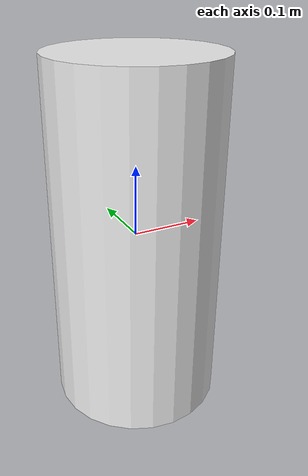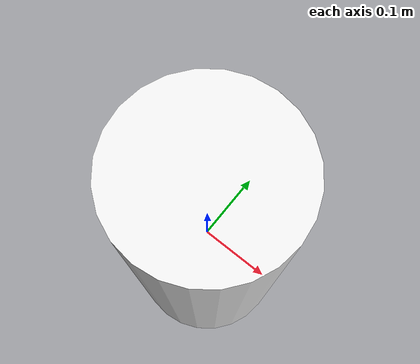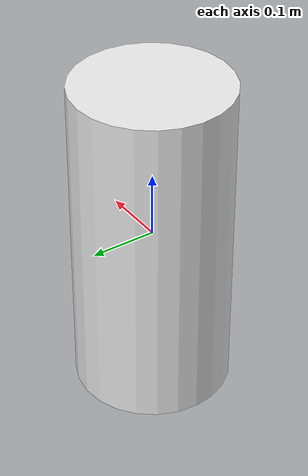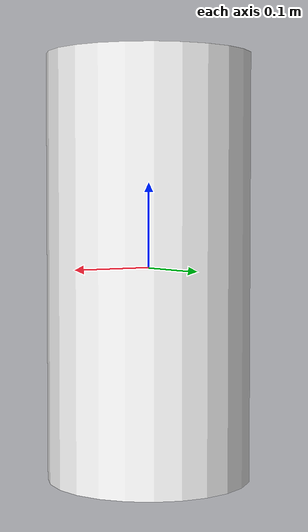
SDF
<?xml version='1.0'?>
<sdf version='1.8'>
  <model name="obstacle_line">
    <gravity>false</gravity>
    <link name="link">
      <collision name="obstacle_line_collision">
        <geometry>
          <cylinder>
            <radius>0.12</radius>
            <length>0.5</length>
          </cylinder>
        </geometry>
      </collision>
      <visual name="obstacle_line_visual">
        <geometry>
          <cylinder>
            <radius>0.12</radius>
            <length>0.5</length>
          </cylinder>
        </geometry>
        <material>
          <script>
            <uri>file://media/materials/scripts/gazebo.material</uri>
            <name>Gazebo/White</name>
          </script>
        </material>
      </visual>
    </link>
  </model>
</sdf>
